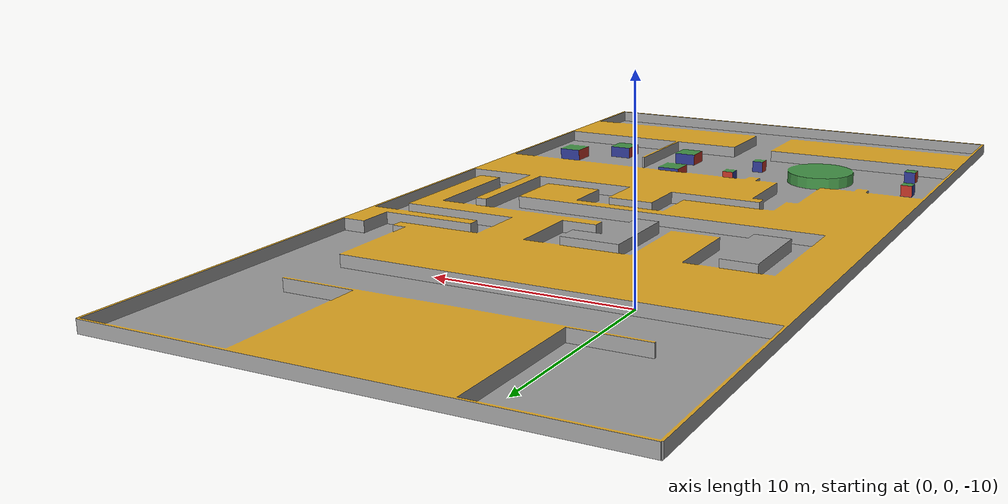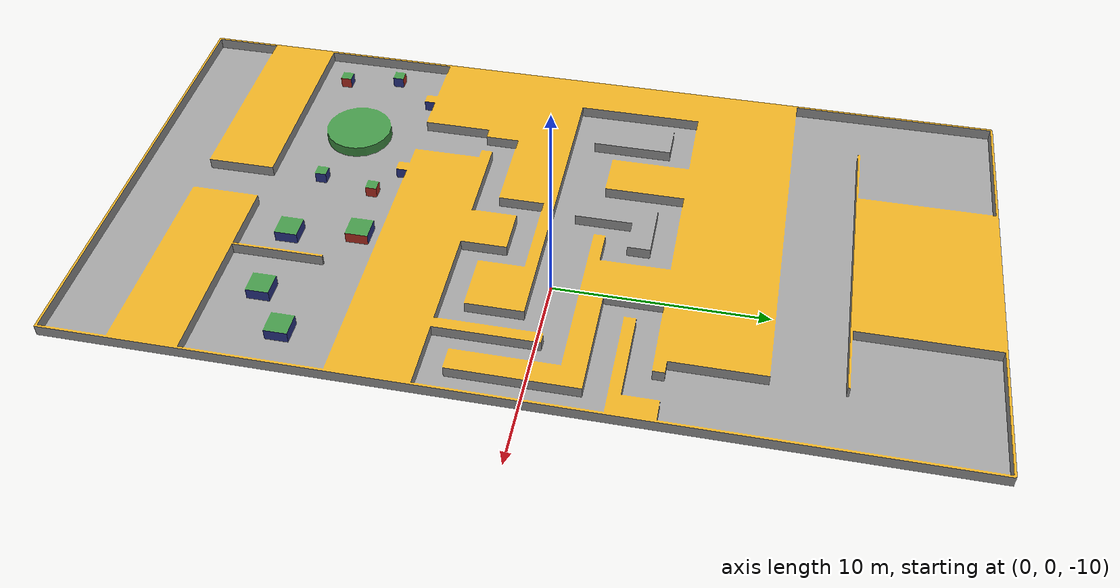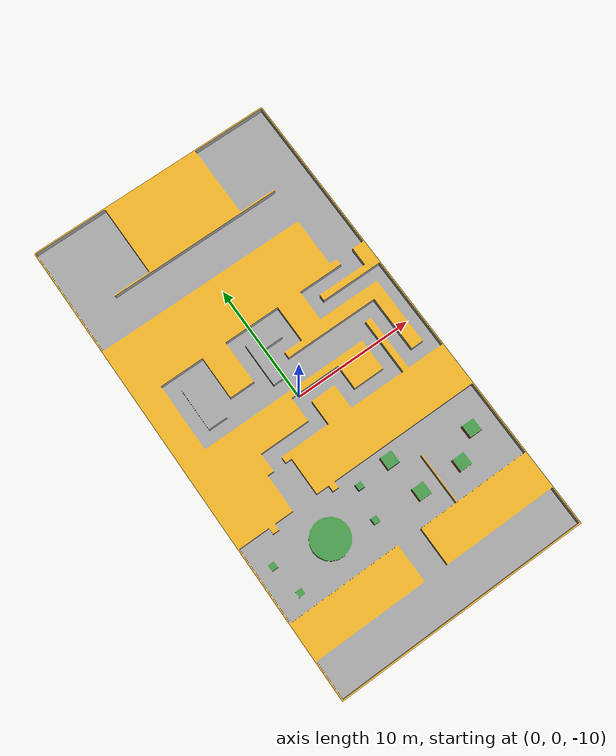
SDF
<?xml version='1.0' encoding='utf-8'?>
<sdf version="1.7">
  <model name="arena">
    <static>true</static>
    <link name="arena_link">
      <pose>0 0 0 0 0 0</pose>

      <visual name="arena_visual">
        <geometry>
          <mesh>
            <uri>model://arena/arena.dae</uri>
            <scale>1 1 1</scale>
          </mesh>
        </geometry>
      </visual>

      <collision name="arena_collision">
        <geometry>
          <mesh>
            <uri>model://arena/arena.dae</uri>
            <scale>1 1 1</scale>
          </mesh>
        </geometry>
      </collision>
    </link>
  </model>
</sdf>
